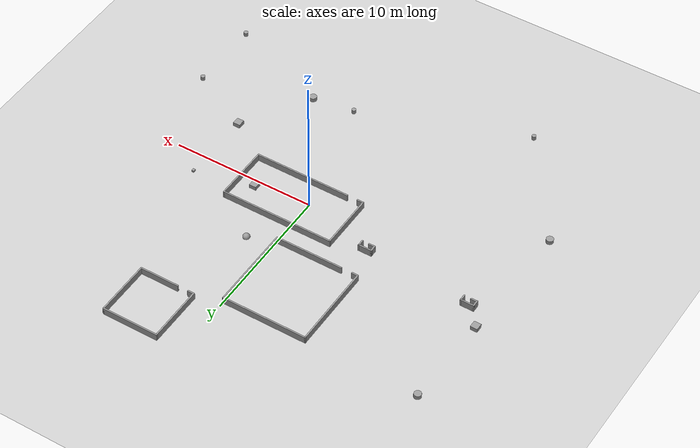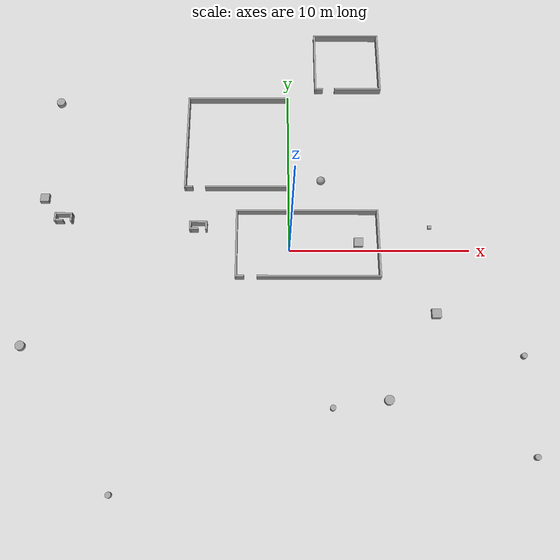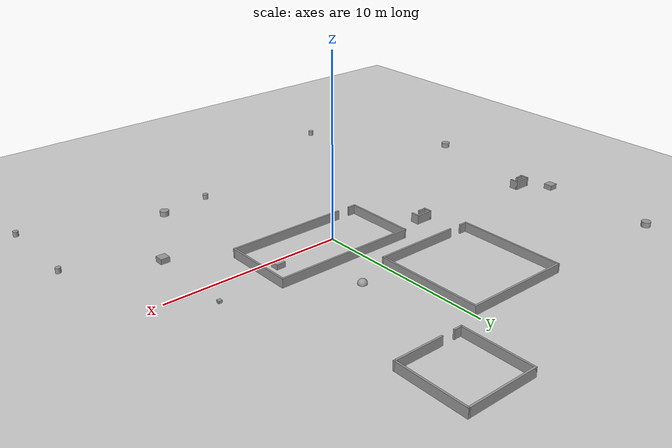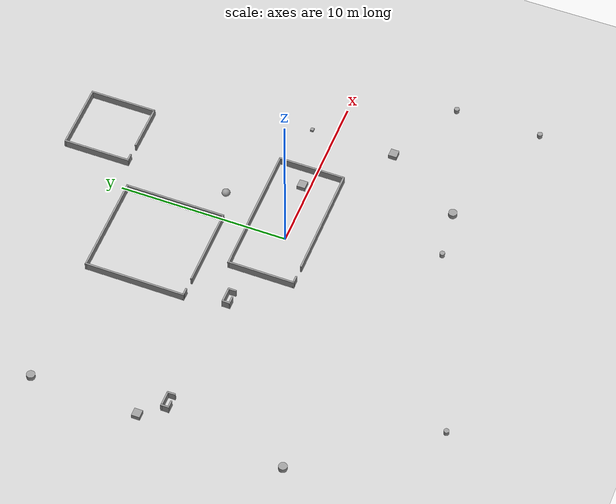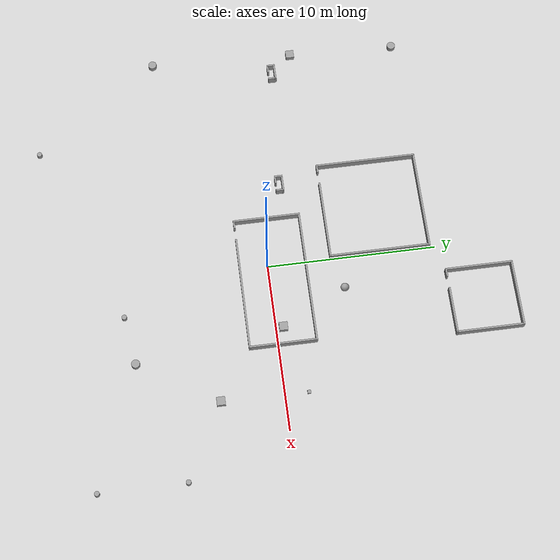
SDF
<sdf version="1.6">
 <world name="default">
  <model name="ground_plane">
   <static>1</static>
   <link name="link">
    <collision name="collision">
     <geometry><plane><normal>0 0 1</normal><size>30 30</size></plane></geometry>
     <surface>
      <contact><collide_bitmask>65535</collide_bitmask></contact>
      <friction><ode><mu>100</mu><mu2>50</mu2></ode></friction>
     </surface>
     <max_contacts>15</max_contacts>
    </collision>
    <visual name="visual">
     <cast_shadows>0</cast_shadows>
     <geometry><plane><normal>0 0 1</normal><size>30 30</size></plane></geometry>
     <material>
      <script><uri>file://media/materials/scripts/gazebo.material</uri><name>Gazebo/Grey</name></script>
     </material>
    </visual>
   </link>
  </model>
  <model name="shape3">
   <pose>1 0.3 0 0 -0 0</pose>
   <link name="Wall_11">
    <collision name="Wall_11_Collision">
     <geometry><box><size>4 0.1 0.5</size></box></geometry>
     <pose>0 0 0.25 0 -0 0</pose>
    </collision>
    <visual name="Wall_11_Visual">
     <pose>0 0 0.25 0 -0 0</pose>
     <geometry><box><size>4 0.1 0.5</size></box></geometry>
     <material>
      <script><uri>file://media/materials/scripts/gazebo.material</uri><name>Gazebo/Grey</name></script>
      <ambient>1 1 1 1</ambient>
     </material>
     <meta><layer>0</layer></meta>
    </visual>
    <pose>-3.95 0 0 0 -0 -1.5708</pose>
   </link>
   <link name="Wall_12">
    <collision name="Wall_12_Collision">
     <geometry><box><size>0.5 0.1 0.5</size></box></geometry>
     <pose>0 0 0.25 0 -0 0</pose>
    </collision>
    <visual name="Wall_12_Visual">
     <pose>0 0 0.25 0 -0 0</pose>
     <geometry><box><size>0.5 0.1 0.5</size></box></geometry>
     <material>
      <script><uri>file://media/materials/scripts/gazebo.material</uri><name>Gazebo/Grey</name></script>
      <ambient>1 1 1 1</ambient>
     </material>
     <meta><layer>0</layer></meta>
    </visual>
    <pose>-3.75 -1.95 0 0 -0 0</pose>
   </link>
   <link name="Wall_7">
    <collision name="Wall_7_Collision">
     <geometry><box><size>8 0.1 0.5</size></box></geometry>
     <pose>0 0 0.25 0 -0 0</pose>
    </collision>
    <visual name="Wall_7_Visual">
     <pose>0 0 0.25 0 -0 0</pose>
     <geometry><box><size>8 0.1 0.5</size></box></geometry>
     <material>
      <script><uri>file://media/materials/scripts/gazebo.material</uri><name>Gazebo/Grey</name></script>
      <ambient>1 1 1 1</ambient>
     </material>
     <meta><layer>0</layer></meta>
    </visual>
    <pose>-0 1.95 0 0 -0 0</pose>
   </link>
   <link name="Wall_8">
    <collision name="Wall_8_Collision">
     <geometry><box><size>4 0.1 0.5</size></box></geometry>
     <pose>0 0 0.25 0 -0 0</pose>
    </collision>
    <visual name="Wall_8_Visual">
     <pose>0 0 0.25 0 -0 0</pose>
     <geometry><box><size>4 0.1 0.5</size></box></geometry>
     <material>
      <script><uri>file://media/materials/scripts/gazebo.material</uri><name>Gazebo/Grey</name></script>
      <ambient>1 1 1 1</ambient>
     </material>
     <meta><layer>0</layer></meta>
    </visual>
    <pose>3.95 0 0 0 -0 -1.5708</pose>
   </link>
   <link name="Wall_9">
    <collision name="Wall_9_Collision">
     <geometry><box><size>6.8 0.1 0.5</size></box></geometry>
     <pose>0 0 0.25 0 -0 0</pose>
    </collision>
    <visual name="Wall_9_Visual">
     <pose>0 0 0.25 0 -0 0</pose>
     <geometry><box><size>6.8 0.1 0.5</size></box></geometry>
     <material>
      <script><uri>file://media/materials/scripts/gazebo.material</uri><name>Gazebo/Grey</name></script>
      <ambient>1 1 1 1</ambient>
     </material>
     <meta><layer>0</layer></meta>
    </visual>
    <pose>0.6 -1.95 0 0 -0 3.14159</pose>
   </link>
   <static>1</static>
  </model>
  <model name="box_d=50">
   <link name="link_2">
    <inertial>
     <mass>1</mass>
     <inertia>
      <ixx>0.166667</ixx>
      <ixy>0</ixy>
      <ixz>0</ixz>
      <iyy>0.166667</iyy>
      <iyz>0</iyz>
      <izz>0.166667</izz>
     </inertia>
    </inertial>
    <pose>3.85 0.45 0 0 -0 0</pose>
    <visual name="visual">
     <geometry><box><size>0.5 0.5 0.5</size></box></geometry>
     <material>
      <lighting>1</lighting>
      <script><uri>file://media/materials/scripts/gazebo.material</uri><name>Gazebo/Grey</name></script>
      <shader type="vertex"><normal_map>__default__</normal_map></shader>
      <ambient>0.3 0.3 0.3 1</ambient>
      <diffuse>0.7 0.7 0.7 1</diffuse>
      <specular>0.01 0.01 0.01 1</specular>
      <emissive>0 0 0 1</emissive>
     </material>
    </visual>
    <collision name="collision">
     <geometry><box><size>0.5 0.5 0.5</size></box></geometry>
     <surface>
      <friction>
       <ode><mu>1</mu><mu2>1</mu2><fdir1>0 0 0</fdir1><slip1>0</slip1><slip2>0</slip2></ode>
       <torsional>
        <coefficient>1</coefficient>
        <patch_radius>0</patch_radius>
        <surface_radius>0</surface_radius>
        <use_patch_radius>1</use_patch_radius>
        <ode><slip>0</slip></ode>
       </torsional>
      </friction>
      <bounce><restitution_coefficient>0</restitution_coefficient><threshold>1e+06</threshold></bounce>
      <contact>
       <collide_without_contact>0</collide_without_contact>
       <collide_without_contact_bitmask>1</collide_without_contact_bitmask>
       <collide_bitmask>1</collide_bitmask>
       <ode>
        <soft_cfm>0</soft_cfm>
        <soft_erp>0.2</soft_erp>
        <kp>1e+13</kp>
        <kd>1</kd>
        <max_vel>0.01</max_vel>
        <min_depth>0</min_depth>
       </ode>
       <bullet>
        <split_impulse>1</split_impulse>
        <split_impulse_penetration_threshold>-0.01</split_impulse_penetration_threshold>
        <soft_cfm>0</soft_cfm>
        <soft_erp>0.2</soft_erp>
        <kp>1e+13</kp>
        <kd>1</kd>
       </bullet>
      </contact>
     </surface>
    </collision>
   </link>
   <static>0</static>
  </model>
  <model name="shape0">
   <pose>-5.1 1.35 0 0 -0 0</pose>
   <link name="Wall_0">
    <pose>0 0.2 0 0 -0 0</pose>
    <inertial>
     <mass>1</mass>
     <inertia><ixx>1</ixx><ixy>0</ixy><ixz>0</ixz><iyy>1</iyy><iyz>0</iyz><izz>1</izz></inertia>
    </inertial>
    <visual name="Wall_0_Visual">
     <pose>0 0 0.25 0 -0 0</pose>
     <geometry><box><size>1 0.1 0.5</size></box></geometry>
     <material>
      <script><uri>file://media/materials/scripts/gazebo.material</uri><name>Gazebo/Grey</name></script>
      <ambient>1 1 1 1</ambient>
      <shader type="vertex"><normal_map>__default__</normal_map></shader>
      <diffuse>0.7 0.7 0.7 1</diffuse>
      <specular>0.01 0.01 0.01 1</specular>
      <emissive>0 0 0 1</emissive>
     </material>
     <meta><layer>0</layer></meta>
    </visual>
    <collision name="Wall_0_Collision">
     <pose>0 0 0.25 0 -0 0</pose>
     <geometry><box><size>1 0.1 0.5</size></box></geometry>
     <surface>
      <friction>
       <ode><mu>1</mu><mu2>1</mu2><fdir1>0 0 0</fdir1><slip1>0</slip1><slip2>0</slip2></ode>
       <torsional>
        <coefficient>1</coefficient>
        <patch_radius>0</patch_radius>
        <surface_radius>0</surface_radius>
        <use_patch_radius>1</use_patch_radius>
        <ode><slip>0</slip></ode>
       </torsional>
      </friction>
      <bounce><restitution_coefficient>0</restitution_coefficient><threshold>1e+06</threshold></bounce>
      <contact>
       <collide_without_contact>0</collide_without_contact>
       <collide_without_contact_bitmask>1</collide_without_contact_bitmask>
       <collide_bitmask>1</collide_bitmask>
       <ode>
        <soft_cfm>0</soft_cfm>
        <soft_erp>0.2</soft_erp>
        <kp>1e+13</kp>
        <kd>1</kd>
        <max_vel>0.01</max_vel>
        <min_depth>0</min_depth>
       </ode>
       <bullet>
        <split_impulse>1</split_impulse>
        <split_impulse_penetration_threshold>-0.01</split_impulse_penetration_threshold>
        <soft_cfm>0</soft_cfm>
        <soft_erp>0.2</soft_erp>
        <kp>1e+13</kp>
        <kd>1</kd>
       </bullet>
      </contact>
     </surface>
    </collision>
   </link>
   <link name="Wall_2">
    <pose>-0.45 0 0.01 0 0 -1.5708</pose>
    <inertial>
     <mass>1</mass>
     <inertia><ixx>1</ixx><ixy>0</ixy><ixz>0</ixz><iyy>1</iyy><iyz>0</iyz><izz>1</izz></inertia>
    </inertial>
    <visual name="Wall_2_Visual">
     <pose>0 0 0.25 0 -0 0</pose>
     <geometry><box><size>0.5 0.1 0.5</size></box></geometry>
     <material>
      <script><uri>file://media/materials/scripts/gazebo.material</uri><name>Gazebo/Grey</name></script>
      <ambient>1 1 1 1</ambient>
      <shader type="vertex"><normal_map>__default__</normal_map></shader>
      <diffuse>0.7 0.7 0.7 1</diffuse>
      <specular>0.01 0.01 0.01 1</specular>
      <emissive>0 0 0 1</emissive>
     </material>
     <meta><layer>0</layer></meta>
    </visual>
    <collision name="Wall_2_Collision">
     <pose>0 0 0.25 0 -0 0</pose>
     <geometry><box><size>0.5 0.1 0.5</size></box></geometry>
     <surface>
      <friction>
       <ode><mu>1</mu><mu2>1</mu2><fdir1>0 0 0</fdir1><slip1>0</slip1><slip2>0</slip2></ode>
       <torsional>
        <coefficient>1</coefficient>
        <patch_radius>0</patch_radius>
        <surface_radius>0</surface_radius>
        <use_patch_radius>1</use_patch_radius>
        <ode><slip>0</slip></ode>
       </torsional>
      </friction>
      <bounce><restitution_coefficient>0</restitution_coefficient><threshold>1e+06</threshold></bounce>
      <contact>
       <collide_without_contact>0</collide_without_contact>
       <collide_without_contact_bitmask>1</collide_without_contact_bitmask>
       <collide_bitmask>1</collide_bitmask>
       <ode>
        <soft_cfm>0</soft_cfm>
        <soft_erp>0.2</soft_erp>
        <kp>1e+13</kp>
        <kd>1</kd>
        <max_vel>0.01</max_vel>
        <min_depth>0</min_depth>
       </ode>
       <bullet>
        <split_impulse>1</split_impulse>
        <split_impulse_penetration_threshold>-0.01</split_impulse_penetration_threshold>
        <soft_cfm>0</soft_cfm>
        <soft_erp>0.2</soft_erp>
        <kp>1e+13</kp>
        <kd>1</kd>
       </bullet>
      </contact>
     </surface>
    </collision>
   </link>
   <link name="Wall_4">
    <pose>0.45 0 0 0 0 -1.5708</pose>
    <inertial>
     <mass>1</mass>
     <inertia><ixx>1</ixx><ixy>0</ixy><ixz>0</ixz><iyy>1</iyy><iyz>0</iyz><izz>1</izz></inertia>
    </inertial>
    <visual name="Wall_4_Visual">
     <pose>0 0 0.25 0 -0 0</pose>
     <geometry><box><size>0.5 0.1 0.5</size></box></geometry>
     <material>
      <script><uri>file://media/materials/scripts/gazebo.material</uri><name>Gazebo/Grey</name></script>
      <ambient>1 1 1 1</ambient>
      <shader type="vertex"><normal_map>__default__</normal_map></shader>
      <diffuse>0.7 0.7 0.7 1</diffuse>
      <specular>0.01 0.01 0.01 1</specular>
      <emissive>0 0 0 1</emissive>
     </material>
     <meta><layer>0</layer></meta>
    </visual>
    <collision name="Wall_4_Collision">
     <pose>0 0 0.25 0 -0 0</pose>
     <geometry><box><size>0.5 0.1 0.5</size></box></geometry>
     <surface>
      <friction>
       <ode><mu>1</mu><mu2>1</mu2><fdir1>0 0 0</fdir1><slip1>0</slip1><slip2>0</slip2></ode>
       <torsional>
        <coefficient>1</coefficient>
        <patch_radius>0</patch_radius>
        <surface_radius>0</surface_radius>
        <use_patch_radius>1</use_patch_radius>
        <ode><slip>0</slip></ode>
       </torsional>
      </friction>
      <bounce><restitution_coefficient>0</restitution_coefficient><threshold>1e+06</threshold></bounce>
      <contact>
       <collide_without_contact>0</collide_without_contact>
       <collide_without_contact_bitmask>1</collide_without_contact_bitmask>
       <collide_bitmask>1</collide_bitmask>
       <ode>
        <soft_cfm>0</soft_cfm>
        <soft_erp>0.2</soft_erp>
        <kp>1e+13</kp>
        <kd>1</kd>
        <max_vel>0.01</max_vel>
        <min_depth>0</min_depth>
       </ode>
       <bullet>
        <split_impulse>1</split_impulse>
        <split_impulse_penetration_threshold>-0.01</split_impulse_penetration_threshold>
        <soft_cfm>0</soft_cfm>
        <soft_erp>0.2</soft_erp>
        <kp>1e+13</kp>
        <kd>1</kd>
       </bullet>
      </contact>
     </surface>
    </collision>
   </link>
   <link name="Wall_7">
    <pose>-0.25 -0.2 0 0 -0 0</pose>
    <inertial>
     <mass>1</mass>
     <inertia><ixx>1</ixx><ixy>0</ixy><ixz>0</ixz><iyy>1</iyy><iyz>0</iyz><izz>1</izz></inertia>
    </inertial>
    <visual name="Wall_7_Visual">
     <pose>0 0 0.25 0 -0 0</pose>
     <geometry><box><size>0.5 0.1 0.5</size></box></geometry>
     <material>
      <script><uri>file://media/materials/scripts/gazebo.material</uri><name>Gazebo/Grey</name></script>
      <ambient>1 1 1 1</ambient>
      <shader type="vertex"><normal_map>__default__</normal_map></shader>
      <diffuse>0.7 0.7 0.7 1</diffuse>
      <specular>0.01 0.01 0.01 1</specular>
      <emissive>0 0 0 1</emissive>
     </material>
     <meta><layer>0</layer></meta>
    </visual>
    <collision name="Wall_7_Collision">
     <pose>0 0 0.25 0 -0 0</pose>
     <geometry><box><size>0.5 0.1 0.5</size></box></geometry>
     <surface>
      <friction>
       <ode><mu>1</mu><mu2>1</mu2><fdir1>0 0 0</fdir1><slip1>0</slip1><slip2>0</slip2></ode>
       <torsional>
        <coefficient>1</coefficient>
        <patch_radius>0</patch_radius>
        <surface_radius>0</surface_radius>
        <use_patch_radius>1</use_patch_radius>
        <ode><slip>0</slip></ode>
       </torsional>
      </friction>
      <bounce><restitution_coefficient>0</restitution_coefficient><threshold>1e+06</threshold></bounce>
      <contact>
       <collide_without_contact>0</collide_without_contact>
       <collide_without_contact_bitmask>1</collide_without_contact_bitmask>
       <collide_bitmask>1</collide_bitmask>
       <ode>
        <soft_cfm>0</soft_cfm>
        <soft_erp>0.2</soft_erp>
        <kp>1e+13</kp>
        <kd>1</kd>
        <max_vel>0.01</max_vel>
        <min_depth>0</min_depth>
       </ode>
       <bullet>
        <split_impulse>1</split_impulse>
        <split_impulse_penetration_threshold>-0.01</split_impulse_penetration_threshold>
        <soft_cfm>0</soft_cfm>
        <soft_erp>0.2</soft_erp>
        <kp>1e+13</kp>
        <kd>1</kd>
       </bullet>
      </contact>
     </surface>
    </collision>
   </link>
   <static>1</static>
  </model>
  <model name="cylinder_d=50">
   <link name="link_0">
    <inertial>
     <mass>1</mass>
     <inertia><ixx>0.145833</ixx><ixy>0</ixy><ixz>0</ixz><iyy>0.145833</iyy><iyz>0</iyz><izz>0.125</izz></inertia>
    </inertial>
    <pose>5.05 -8.25 0 0 -0 0</pose>
    <visual name="visual">
     <geometry><cylinder><radius>0.25</radius><length>0.5</length></cylinder></geometry>
     <material>
      <lighting>1</lighting>
      <script><uri>file://media/materials/scripts/gazebo.material</uri><name>Gazebo/Grey</name></script>
      <shader type="vertex"><normal_map>__default__</normal_map></shader>
      <ambient>0.3 0.3 0.3 1</ambient>
      <diffuse>0.7 0.7 0.7 1</diffuse>
      <specular>0.01 0.01 0.01 1</specular>
      <emissive>0 0 0 1</emissive>
     </material>
    </visual>
    <collision name="collision">
     <geometry><cylinder><radius>0.25</radius><length>0.5</length></cylinder></geometry>
     <surface>
      <friction>
       <ode><mu>1</mu><mu2>1</mu2><fdir1>0 0 0</fdir1><slip1>0</slip1><slip2>0</slip2></ode>
       <torsional>
        <coefficient>1</coefficient>
        <patch_radius>0</patch_radius>
        <surface_radius>0</surface_radius>
        <use_patch_radius>1</use_patch_radius>
        <ode><slip>0</slip></ode>
       </torsional>
      </friction>
      <bounce><restitution_coefficient>0</restitution_coefficient><threshold>1e+06</threshold></bounce>
      <contact>
       <collide_without_contact>0</collide_without_contact>
       <collide_without_contact_bitmask>1</collide_without_contact_bitmask>
       <collide_bitmask>1</collide_bitmask>
       <ode>
        <soft_cfm>0</soft_cfm>
        <soft_erp>0.2</soft_erp>
        <kp>1e+13</kp>
        <kd>1</kd>
        <max_vel>0.01</max_vel>
        <min_depth>0</min_depth>
       </ode>
       <bullet>
        <split_impulse>1</split_impulse>
        <split_impulse_penetration_threshold>-0.01</split_impulse_penetration_threshold>
        <soft_cfm>0</soft_cfm>
        <soft_erp>0.2</soft_erp>
        <kp>1e+13</kp>
        <kd>1</kd>
       </bullet>
      </contact>
     </surface>
    </collision>
   </link>
   <static>0</static>
  </model>
  <model name="box_d=20">
   <link name="link_2">
    <inertial>
     <mass>1</mass>
     <inertia>
      <ixx>0.166667</ixx>
      <ixy>0</ixy>
      <ixz>0</ixz>
      <iyy>0.166667</iyy>
      <iyz>0</iyz>
      <izz>0.166667</izz>
     </inertia>
    </inertial>
    <pose>7.9 1.4 0 0 -0 0</pose>
    <visual name="visual">
     <geometry><box><size>0.2 0.2 0.2</size></box></geometry>
     <material>
      <lighting>1</lighting>
      <script><uri>file://media/materials/scripts/gazebo.material</uri><name>Gazebo/Grey</name></script>
      <shader type="vertex"><normal_map>__default__</normal_map></shader>
      <ambient>0.3 0.3 0.3 1</ambient>
      <diffuse>0.7 0.7 0.7 1</diffuse>
      <specular>0.01 0.01 0.01 1</specular>
      <emissive>0 0 0 1</emissive>
     </material>
    </visual>
    <collision name="collision">
     <geometry><box><size>0.2 0.2 0.2</size></box></geometry>
     <surface>
      <friction>
       <ode><mu>1</mu><mu2>1</mu2><fdir1>0 0 0</fdir1><slip1>0</slip1><slip2>0</slip2></ode>
       <torsional>
        <coefficient>1</coefficient>
        <patch_radius>0</patch_radius>
        <surface_radius>0</surface_radius>
        <use_patch_radius>1</use_patch_radius>
        <ode><slip>0</slip></ode>
       </torsional>
      </friction>
      <bounce><restitution_coefficient>0</restitution_coefficient><threshold>1e+06</threshold></bounce>
      <contact>
       <collide_without_contact>0</collide_without_contact>
       <collide_without_contact_bitmask>1</collide_without_contact_bitmask>
       <collide_bitmask>1</collide_bitmask>
       <ode>
        <soft_cfm>0</soft_cfm>
        <soft_erp>0.2</soft_erp>
        <kp>1e+13</kp>
        <kd>1</kd>
        <max_vel>0.01</max_vel>
        <min_depth>0</min_depth>
       </ode>
       <bullet>
        <split_impulse>1</split_impulse>
        <split_impulse_penetration_threshold>-0.01</split_impulse_penetration_threshold>
        <soft_cfm>0</soft_cfm>
        <soft_erp>0.2</soft_erp>
        <kp>1e+13</kp>
        <kd>1</kd>
       </bullet>
      </contact>
     </surface>
    </collision>
   </link>
   <static>0</static>
  </model>
  <model name="cylinder_d=50">
   <link name="link_0">
    <inertial>
     <mass>1</mass>
     <inertia><ixx>0.145833</ixx><ixy>0</ixy><ixz>0</ixz><iyy>0.145833</iyy><iyz>0</iyz><izz>0.125</izz></inertia>
    </inertial>
    <pose>-14.25 -5.45 0 0 -0 0</pose>
    <visual name="visual">
     <geometry><cylinder><radius>0.25</radius><length>0.5</length></cylinder></geometry>
     <material>
      <lighting>1</lighting>
      <script><uri>file://media/materials/scripts/gazebo.material</uri><name>Gazebo/Grey</name></script>
      <shader type="vertex"><normal_map>__default__</normal_map></shader>
      <ambient>0.3 0.3 0.3 1</ambient>
      <diffuse>0.7 0.7 0.7 1</diffuse>
      <specular>0.01 0.01 0.01 1</specular>
      <emissive>0 0 0 1</emissive>
     </material>
    </visual>
    <collision name="collision">
     <geometry><cylinder><radius>0.25</radius><length>0.5</length></cylinder></geometry>
     <surface>
      <friction>
       <ode><mu>1</mu><mu2>1</mu2><fdir1>0 0 0</fdir1><slip1>0</slip1><slip2>0</slip2></ode>
       <torsional>
        <coefficient>1</coefficient>
        <patch_radius>0</patch_radius>
        <surface_radius>0</surface_radius>
        <use_patch_radius>1</use_patch_radius>
        <ode><slip>0</slip></ode>
       </torsional>
      </friction>
      <bounce><restitution_coefficient>0</restitution_coefficient><threshold>1e+06</threshold></bounce>
      <contact>
       <collide_without_contact>0</collide_without_contact>
       <collide_without_contact_bitmask>1</collide_without_contact_bitmask>
       <collide_bitmask>1</collide_bitmask>
       <ode>
        <soft_cfm>0</soft_cfm>
        <soft_erp>0.2</soft_erp>
        <kp>1e+13</kp>
        <kd>1</kd>
        <max_vel>0.01</max_vel>
        <min_depth>0</min_depth>
       </ode>
       <bullet>
        <split_impulse>1</split_impulse>
        <split_impulse_penetration_threshold>-0.01</split_impulse_penetration_threshold>
        <soft_cfm>0</soft_cfm>
        <soft_erp>0.2</soft_erp>
        <kp>1e+13</kp>
        <kd>1</kd>
       </bullet>
      </contact>
     </surface>
    </collision>
   </link>
   <static>0</static>
  </model>
  <model name="box_d=50">
   <link name="link_2">
    <inertial>
     <mass>1</mass>
     <inertia>
      <ixx>0.166667</ixx>
      <ixy>0</ixy>
      <ixz>0</ixz>
      <iyy>0.166667</iyy>
      <iyz>0</iyz>
      <izz>0.166667</izz>
     </inertia>
    </inertial>
    <pose>7.85 -3.65 0 0 -0 0</pose>
    <visual name="visual">
     <geometry><box><size>0.5 0.5 0.5</size></box></geometry>
     <material>
      <lighting>1</lighting>
      <script><uri>file://media/materials/scripts/gazebo.material</uri><name>Gazebo/Grey</name></script>
      <shader type="vertex"><normal_map>__default__</normal_map></shader>
      <ambient>0.3 0.3 0.3 1</ambient>
      <diffuse>0.7 0.7 0.7 1</diffuse>
      <specular>0.01 0.01 0.01 1</specular>
      <emissive>0 0 0 1</emissive>
     </material>
    </visual>
    <collision name="collision">
     <geometry><box><size>0.5 0.5 0.5</size></box></geometry>
     <surface>
      <friction>
       <ode><mu>1</mu><mu2>1</mu2><fdir1>0 0 0</fdir1><slip1>0</slip1><slip2>0</slip2></ode>
       <torsional>
        <coefficient>1</coefficient>
        <patch_radius>0</patch_radius>
        <surface_radius>0</surface_radius>
        <use_patch_radius>1</use_patch_radius>
        <ode><slip>0</slip></ode>
       </torsional>
      </friction>
      <bounce><restitution_coefficient>0</restitution_coefficient><threshold>1e+06</threshold></bounce>
      <contact>
       <collide_without_contact>0</collide_without_contact>
       <collide_without_contact_bitmask>1</collide_without_contact_bitmask>
       <collide_bitmask>1</collide_bitmask>
       <ode>
        <soft_cfm>0</soft_cfm>
        <soft_erp>0.2</soft_erp>
        <kp>1e+13</kp>
        <kd>1</kd>
        <max_vel>0.01</max_vel>
        <min_depth>0</min_depth>
       </ode>
       <bullet>
        <split_impulse>1</split_impulse>
        <split_impulse_penetration_threshold>-0.01</split_impulse_penetration_threshold>
        <soft_cfm>0</soft_cfm>
        <soft_erp>0.2</soft_erp>
        <kp>1e+13</kp>
        <kd>1</kd>
       </bullet>
      </contact>
     </surface>
    </collision>
   </link>
   <static>0</static>
  </model>
  <model name="shape7">
   <pose>-3 6.7 0 0 -0 0</pose>
   <link name="Wall_34">
    <collision name="Wall_34_Collision">
     <geometry><box><size>6 0.1 0.5</size></box></geometry>
     <pose>0 0 0.25 0 -0 0</pose>
    </collision>
    <visual name="Wall_34_Visual">
     <pose>0 0 0.25 0 -0 0</pose>
     <geometry><box><size>6 0.1 0.5</size></box></geometry>
     <material>
      <script><uri>file://media/materials/scripts/gazebo.material</uri><name>Gazebo/Grey</name></script>
      <ambient>1 1 1 1</ambient>
     </material>
     <meta><layer>0</layer></meta>
    </visual>
    <pose>0 2.95 0 0 -0 0</pose>
   </link>
   <link name="Wall_35">
    <collision name="Wall_35_Collision">
     <geometry><box><size>6 0.1 0.5</size></box></geometry>
     <pose>0 0 0.25 0 -0 0</pose>
    </collision>
    <visual name="Wall_35_Visual">
     <pose>0 0 0.25 0 -0 0</pose>
     <geometry><box><size>6 0.1 0.5</size></box></geometry>
     <material>
      <script><uri>file://media/materials/scripts/gazebo.material</uri><name>Gazebo/Grey</name></script>
      <ambient>1 1 1 1</ambient>
     </material>
     <meta><layer>0</layer></meta>
    </visual>
    <pose>2.95 0 0 0 -0 -1.5708</pose>
   </link>
   <link name="Wall_36">
    <collision name="Wall_36_Collision">
     <geometry><box><size>4.8 0.1 0.5</size></box></geometry>
     <pose>0 0 0.25 0 -0 0</pose>
    </collision>
    <visual name="Wall_36_Visual">
     <pose>0 0 0.25 0 -0 0</pose>
     <geometry><box><size>4.8 0.1 0.5</size></box></geometry>
     <material>
      <script><uri>file://media/materials/scripts/gazebo.material</uri><name>Gazebo/Grey</name></script>
      <ambient>1 1 1 1</ambient>
     </material>
     <meta><layer>0</layer></meta>
    </visual>
    <pose>0.6 -2.95 0 0 -0 3.14159</pose>
   </link>
   <link name="Wall_38">
    <collision name="Wall_38_Collision">
     <geometry><box><size>6 0.1 0.5</size></box></geometry>
     <pose>0 0 0.25 0 -0 0</pose>
    </collision>
    <visual name="Wall_38_Visual">
     <pose>0 0 0.25 0 -0 0</pose>
     <geometry><box><size>6 0.1 0.5</size></box></geometry>
     <material>
      <script><uri>file://media/materials/scripts/gazebo.material</uri><name>Gazebo/Grey</name></script>
      <ambient>1 1 1 1</ambient>
     </material>
     <meta><layer>0</layer></meta>
    </visual>
    <pose>-2.95 0 0 0 -0 -1.5708</pose>
   </link>
   <link name="Wall_39">
    <collision name="Wall_39_Collision">
     <geometry><box><size>0.5 0.1 0.5</size></box></geometry>
     <pose>0 0 0.25 0 -0 0</pose>
    </collision>
    <visual name="Wall_39_Visual">
     <pose>0 0 0.25 0 -0 0</pose>
     <geometry><box><size>0.5 0.1 0.5</size></box></geometry>
     <material>
      <script><uri>file://media/materials/scripts/gazebo.material</uri><name>Gazebo/Grey</name></script>
      <ambient>1 1 1 1</ambient>
     </material>
     <meta><layer>0</layer></meta>
    </visual>
    <pose>-2.75 -2.95 0 0 -0 0</pose>
   </link>
   <static>1</static>
  </model>
  <model name="box_d=50">
   <link name="link_2">
    <inertial>
     <mass>1</mass>
     <inertia>
      <ixx>0.166667</ixx>
      <ixy>0</ixy>
      <ixz>0</ixz>
      <iyy>0.166667</iyy>
      <iyz>0</iyz>
      <izz>0.166667</izz>
     </inertia>
    </inertial>
    <pose>-13.95 3.15 0 0 -0 0</pose>
    <visual name="visual">
     <geometry><box><size>0.5 0.5 0.5</size></box></geometry>
     <material>
      <lighting>1</lighting>
      <script><uri>file://media/materials/scripts/gazebo.material</uri><name>Gazebo/Grey</name></script>
      <shader type="vertex"><normal_map>__default__</normal_map></shader>
      <ambient>0.3 0.3 0.3 1</ambient>
      <diffuse>0.7 0.7 0.7 1</diffuse>
      <specular>0.01 0.01 0.01 1</specular>
      <emissive>0 0 0 1</emissive>
     </material>
    </visual>
    <collision name="collision">
     <geometry><box><size>0.5 0.5 0.5</size></box></geometry>
     <surface>
      <friction>
       <ode><mu>1</mu><mu2>1</mu2><fdir1>0 0 0</fdir1><slip1>0</slip1><slip2>0</slip2></ode>
       <torsional>
        <coefficient>1</coefficient>
        <patch_radius>0</patch_radius>
        <surface_radius>0</surface_radius>
        <use_patch_radius>1</use_patch_radius>
        <ode><slip>0</slip></ode>
       </torsional>
      </friction>
      <bounce><restitution_coefficient>0</restitution_coefficient><threshold>1e+06</threshold></bounce>
      <contact>
       <collide_without_contact>0</collide_without_contact>
       <collide_without_contact_bitmask>1</collide_without_contact_bitmask>
       <collide_bitmask>1</collide_bitmask>
       <ode>
        <soft_cfm>0</soft_cfm>
        <soft_erp>0.2</soft_erp>
        <kp>1e+13</kp>
        <kd>1</kd>
        <max_vel>0.01</max_vel>
        <min_depth>0</min_depth>
       </ode>
       <bullet>
        <split_impulse>1</split_impulse>
        <split_impulse_penetration_threshold>-0.01</split_impulse_penetration_threshold>
        <soft_cfm>0</soft_cfm>
        <soft_erp>0.2</soft_erp>
        <kp>1e+13</kp>
        <kd>1</kd>
       </bullet>
      </contact>
     </surface>
    </collision>
   </link>
   <static>0</static>
  </model>
  <model name="cylinder_d=30">
   <link name="link_0">
    <inertial>
     <mass>1</mass>
     <inertia><ixx>0.145833</ixx><ixy>0</ixy><ixz>0</ixz><iyy>0.145833</iyy><iyz>0</iyz><izz>0.125</izz></inertia>
    </inertial>
    <pose>12.25 -5.95 0 0 -0 0</pose>
    <visual name="visual">
     <geometry><cylinder><radius>0.15</radius><length>0.5</length></cylinder></geometry>
     <material>
      <lighting>1</lighting>
      <script><uri>file://media/materials/scripts/gazebo.material</uri><name>Gazebo/Grey</name></script>
      <shader type="vertex"><normal_map>__default__</normal_map></shader>
      <ambient>0.3 0.3 0.3 1</ambient>
      <diffuse>0.7 0.7 0.7 1</diffuse>
      <specular>0.01 0.01 0.01 1</specular>
      <emissive>0 0 0 1</emissive>
     </material>
    </visual>
    <collision name="collision">
     <geometry><cylinder><radius>0.15</radius><length>0.5</length></cylinder></geometry>
     <surface>
      <friction>
       <ode><mu>1</mu><mu2>1</mu2><fdir1>0 0 0</fdir1><slip1>0</slip1><slip2>0</slip2></ode>
       <torsional>
        <coefficient>1</coefficient>
        <patch_radius>0</patch_radius>
        <surface_radius>0</surface_radius>
        <use_patch_radius>1</use_patch_radius>
        <ode><slip>0</slip></ode>
       </torsional>
      </friction>
      <bounce><restitution_coefficient>0</restitution_coefficient><threshold>1e+06</threshold></bounce>
      <contact>
       <collide_without_contact>0</collide_without_contact>
       <collide_without_contact_bitmask>1</collide_without_contact_bitmask>
       <collide_bitmask>1</collide_bitmask>
       <ode>
        <soft_cfm>0</soft_cfm>
        <soft_erp>0.2</soft_erp>
        <kp>1e+13</kp>
        <kd>1</kd>
        <max_vel>0.01</max_vel>
        <min_depth>0</min_depth>
       </ode>
       <bullet>
        <split_impulse>1</split_impulse>
        <split_impulse_penetration_threshold>-0.01</split_impulse_penetration_threshold>
        <soft_cfm>0</soft_cfm>
        <soft_erp>0.2</soft_erp>
        <kp>1e+13</kp>
        <kd>1</kd>
       </bullet>
      </contact>
     </surface>
    </collision>
   </link>
   <static>0</static>
  </model>
  <model name="cylinder_d=30">
   <link name="link_0">
    <inertial>
     <mass>1</mass>
     <inertia><ixx>0.145833</ixx><ixy>0</ixy><ixz>0</ixz><iyy>0.145833</iyy><iyz>0</iyz><izz>0.125</izz></inertia>
    </inertial>
    <pose>12.25 -11.05 0 0 -0 0</pose>
    <visual name="visual">
     <geometry><cylinder><radius>0.15</radius><length>0.5</length></cylinder></geometry>
     <material>
      <lighting>1</lighting>
      <script><uri>file://media/materials/scripts/gazebo.material</uri><name>Gazebo/Grey</name></script>
      <shader type="vertex"><normal_map>__default__</normal_map></shader>
      <ambient>0.3 0.3 0.3 1</ambient>
      <diffuse>0.7 0.7 0.7 1</diffuse>
      <specular>0.01 0.01 0.01 1</specular>
      <emissive>0 0 0 1</emissive>
     </material>
    </visual>
    <collision name="collision">
     <geometry><cylinder><radius>0.15</radius><length>0.5</length></cylinder></geometry>
     <surface>
      <friction>
       <ode><mu>1</mu><mu2>1</mu2><fdir1>0 0 0</fdir1><slip1>0</slip1><slip2>0</slip2></ode>
       <torsional>
        <coefficient>1</coefficient>
        <patch_radius>0</patch_radius>
        <surface_radius>0</surface_radius>
        <use_patch_radius>1</use_patch_radius>
        <ode><slip>0</slip></ode>
       </torsional>
      </friction>
      <bounce><restitution_coefficient>0</restitution_coefficient><threshold>1e+06</threshold></bounce>
      <contact>
       <collide_without_contact>0</collide_without_contact>
       <collide_without_contact_bitmask>1</collide_without_contact_bitmask>
       <collide_bitmask>1</collide_bitmask>
       <ode>
        <soft_cfm>0</soft_cfm>
        <soft_erp>0.2</soft_erp>
        <kp>1e+13</kp>
        <kd>1</kd>
        <max_vel>0.01</max_vel>
        <min_depth>0</min_depth>
       </ode>
       <bullet>
        <split_impulse>1</split_impulse>
        <split_impulse_penetration_threshold>-0.01</split_impulse_penetration_threshold>
        <soft_cfm>0</soft_cfm>
        <soft_erp>0.2</soft_erp>
        <kp>1e+13</kp>
        <kd>1</kd>
       </bullet>
      </contact>
     </surface>
    </collision>
   </link>
   <static>0</static>
  </model>
  <model name="cylinder_d=30">
   <link name="link_0">
    <inertial>
     <mass>1</mass>
     <inertia><ixx>0.145833</ixx><ixy>0</ixy><ixz>0</ixz><iyy>0.145833</iyy><iyz>0</iyz><izz>0.125</izz></inertia>
    </inertial>
    <pose>2.15 -8.65 0 0 -0 0</pose>
    <visual name="visual">
     <geometry><cylinder><radius>0.15</radius><length>0.5</length></cylinder></geometry>
     <material>
      <lighting>1</lighting>
      <script><uri>file://media/materials/scripts/gazebo.material</uri><name>Gazebo/Grey</name></script>
      <shader type="vertex"><normal_map>__default__</normal_map></shader>
      <ambient>0.3 0.3 0.3 1</ambient>
      <diffuse>0.7 0.7 0.7 1</diffuse>
      <specular>0.01 0.01 0.01 1</specular>
      <emissive>0 0 0 1</emissive>
     </material>
    </visual>
    <collision name="collision">
     <geometry><cylinder><radius>0.15</radius><length>0.5</length></cylinder></geometry>
     <surface>
      <friction>
       <ode><mu>1</mu><mu2>1</mu2><fdir1>0 0 0</fdir1><slip1>0</slip1><slip2>0</slip2></ode>
       <torsional>
        <coefficient>1</coefficient>
        <patch_radius>0</patch_radius>
        <surface_radius>0</surface_radius>
        <use_patch_radius>1</use_patch_radius>
        <ode><slip>0</slip></ode>
       </torsional>
      </friction>
      <bounce><restitution_coefficient>0</restitution_coefficient><threshold>1e+06</threshold></bounce>
      <contact>
       <collide_without_contact>0</collide_without_contact>
       <collide_without_contact_bitmask>1</collide_without_contact_bitmask>
       <collide_bitmask>1</collide_bitmask>
       <ode>
        <soft_cfm>0</soft_cfm>
        <soft_erp>0.2</soft_erp>
        <kp>1e+13</kp>
        <kd>1</kd>
        <max_vel>0.01</max_vel>
        <min_depth>0</min_depth>
       </ode>
       <bullet>
        <split_impulse>1</split_impulse>
        <split_impulse_penetration_threshold>-0.01</split_impulse_penetration_threshold>
        <soft_cfm>0</soft_cfm>
        <soft_erp>0.2</soft_erp>
        <kp>1e+13</kp>
        <kd>1</kd>
       </bullet>
      </contact>
     </surface>
    </collision>
   </link>
   <static>0</static>
  </model>
  <model name="cylinder_d=50">
   <link name="link_0">
    <inertial>
     <mass>1</mass>
     <inertia><ixx>0.145833</ixx><ixy>0</ixy><ixz>0</ixz><iyy>0.145833</iyy><iyz>0</iyz><izz>0.125</izz></inertia>
    </inertial>
    <pose>-13.75 9.55 0 0 -0 0</pose>
    <visual name="visual">
     <geometry><cylinder><radius>0.25</radius><length>0.5</length></cylinder></geometry>
     <material>
      <lighting>1</lighting>
      <script><uri>file://media/materials/scripts/gazebo.material</uri><name>Gazebo/Grey</name></script>
      <shader type="vertex"><normal_map>__default__</normal_map></shader>
      <ambient>0.3 0.3 0.3 1</ambient>
      <diffuse>0.7 0.7 0.7 1</diffuse>
      <specular>0.01 0.01 0.01 1</specular>
      <emissive>0 0 0 1</emissive>
     </material>
    </visual>
    <collision name="collision">
     <geometry><cylinder><radius>0.25</radius><length>0.5</length></cylinder></geometry>
     <surface>
      <friction>
       <ode><mu>1</mu><mu2>1</mu2><fdir1>0 0 0</fdir1><slip1>0</slip1><slip2>0</slip2></ode>
       <torsional>
        <coefficient>1</coefficient>
        <patch_radius>0</patch_radius>
        <surface_radius>0</surface_radius>
        <use_patch_radius>1</use_patch_radius>
        <ode><slip>0</slip></ode>
       </torsional>
      </friction>
      <bounce><restitution_coefficient>0</restitution_coefficient><threshold>1e+06</threshold></bounce>
      <contact>
       <collide_without_contact>0</collide_without_contact>
       <collide_without_contact_bitmask>1</collide_without_contact_bitmask>
       <collide_bitmask>1</collide_bitmask>
       <ode>
        <soft_cfm>0</soft_cfm>
        <soft_erp>0.2</soft_erp>
        <kp>1e+13</kp>
        <kd>1</kd>
        <max_vel>0.01</max_vel>
        <min_depth>0</min_depth>
       </ode>
       <bullet>
        <split_impulse>1</split_impulse>
        <split_impulse_penetration_threshold>-0.01</split_impulse_penetration_threshold>
        <soft_cfm>0</soft_cfm>
        <soft_erp>0.2</soft_erp>
        <kp>1e+13</kp>
        <kd>1</kd>
       </bullet>
      </contact>
     </surface>
    </collision>
   </link>
   <static>0</static>
  </model>
  <model name="cylinder_d=30">
   <link name="link_0">
    <inertial>
     <mass>1</mass>
     <inertia><ixx>0.145833</ixx><ixy>0</ixy><ixz>0</ixz><iyy>0.145833</iyy><iyz>0</iyz><izz>0.125</izz></inertia>
    </inertial>
    <pose>-8.95 -12.85 0 0 -0 0</pose>
    <visual name="visual">
     <geometry><cylinder><radius>0.15</radius><length>0.5</length></cylinder></geometry>
     <material>
      <lighting>1</lighting>
      <script><uri>file://media/materials/scripts/gazebo.material</uri><name>Gazebo/Grey</name></script>
      <shader type="vertex"><normal_map>__default__</normal_map></shader>
      <ambient>0.3 0.3 0.3 1</ambient>
      <diffuse>0.7 0.7 0.7 1</diffuse>
      <specular>0.01 0.01 0.01 1</specular>
      <emissive>0 0 0 1</emissive>
     </material>
    </visual>
    <collision name="collision">
     <geometry><cylinder><radius>0.15</radius><length>0.5</length></cylinder></geometry>
     <surface>
      <friction>
       <ode><mu>1</mu><mu2>1</mu2><fdir1>0 0 0</fdir1><slip1>0</slip1><slip2>0</slip2></ode>
       <torsional>
        <coefficient>1</coefficient>
        <patch_radius>0</patch_radius>
        <surface_radius>0</surface_radius>
        <use_patch_radius>1</use_patch_radius>
        <ode><slip>0</slip></ode>
       </torsional>
      </friction>
      <bounce><restitution_coefficient>0</restitution_coefficient><threshold>1e+06</threshold></bounce>
      <contact>
       <collide_without_contact>0</collide_without_contact>
       <collide_without_contact_bitmask>1</collide_without_contact_bitmask>
       <collide_bitmask>1</collide_bitmask>
       <ode>
        <soft_cfm>0</soft_cfm>
        <soft_erp>0.2</soft_erp>
        <kp>1e+13</kp>
        <kd>1</kd>
        <max_vel>0.01</max_vel>
        <min_depth>0</min_depth>
       </ode>
       <bullet>
        <split_impulse>1</split_impulse>
        <split_impulse_penetration_threshold>-0.01</split_impulse_penetration_threshold>
        <soft_cfm>0</soft_cfm>
        <soft_erp>0.2</soft_erp>
        <kp>1e+13</kp>
        <kd>1</kd>
       </bullet>
      </contact>
     </surface>
    </collision>
   </link>
   <static>0</static>
  </model>
  <model name="shape0">
   <pose>-12.7 1.85 0 0 -0 0</pose>
   <link name="Wall_0">
    <pose>0 0.2 0 0 -0 0</pose>
    <inertial>
     <mass>1</mass>
     <inertia><ixx>1</ixx><ixy>0</ixy><ixz>0</ixz><iyy>1</iyy><iyz>0</iyz><izz>1</izz></inertia>
    </inertial>
    <visual name="Wall_0_Visual">
     <pose>0 0 0.25 0 -0 0</pose>
     <geometry><box><size>1 0.1 0.5</size></box></geometry>
     <material>
      <script><uri>file://media/materials/scripts/gazebo.material</uri><name>Gazebo/Grey</name></script>
      <ambient>1 1 1 1</ambient>
      <shader type="vertex"><normal_map>__default__</normal_map></shader>
      <diffuse>0.7 0.7 0.7 1</diffuse>
      <specular>0.01 0.01 0.01 1</specular>
      <emissive>0 0 0 1</emissive>
     </material>
     <meta><layer>0</layer></meta>
    </visual>
    <collision name="Wall_0_Collision">
     <pose>0 0 0.25 0 -0 0</pose>
     <geometry><box><size>1 0.1 0.5</size></box></geometry>
     <surface>
      <friction>
       <ode><mu>1</mu><mu2>1</mu2><fdir1>0 0 0</fdir1><slip1>0</slip1><slip2>0</slip2></ode>
       <torsional>
        <coefficient>1</coefficient>
        <patch_radius>0</patch_radius>
        <surface_radius>0</surface_radius>
        <use_patch_radius>1</use_patch_radius>
        <ode><slip>0</slip></ode>
       </torsional>
      </friction>
      <bounce><restitution_coefficient>0</restitution_coefficient><threshold>1e+06</threshold></bounce>
      <contact>
       <collide_without_contact>0</collide_without_contact>
       <collide_without_contact_bitmask>1</collide_without_contact_bitmask>
       <collide_bitmask>1</collide_bitmask>
       <ode>
        <soft_cfm>0</soft_cfm>
        <soft_erp>0.2</soft_erp>
        <kp>1e+13</kp>
        <kd>1</kd>
        <max_vel>0.01</max_vel>
        <min_depth>0</min_depth>
       </ode>
       <bullet>
        <split_impulse>1</split_impulse>
        <split_impulse_penetration_threshold>-0.01</split_impulse_penetration_threshold>
        <soft_cfm>0</soft_cfm>
        <soft_erp>0.2</soft_erp>
        <kp>1e+13</kp>
        <kd>1</kd>
       </bullet>
      </contact>
     </surface>
    </collision>
   </link>
   <link name="Wall_2">
    <pose>-0.45 0 0.01 0 0 -1.5708</pose>
    <inertial>
     <mass>1</mass>
     <inertia><ixx>1</ixx><ixy>0</ixy><ixz>0</ixz><iyy>1</iyy><iyz>0</iyz><izz>1</izz></inertia>
    </inertial>
    <visual name="Wall_2_Visual">
     <pose>0 0 0.25 0 -0 0</pose>
     <geometry><box><size>0.5 0.1 0.5</size></box></geometry>
     <material>
      <script><uri>file://media/materials/scripts/gazebo.material</uri><name>Gazebo/Grey</name></script>
      <ambient>1 1 1 1</ambient>
      <shader type="vertex"><normal_map>__default__</normal_map></shader>
      <diffuse>0.7 0.7 0.7 1</diffuse>
      <specular>0.01 0.01 0.01 1</specular>
      <emissive>0 0 0 1</emissive>
     </material>
     <meta><layer>0</layer></meta>
    </visual>
    <collision name="Wall_2_Collision">
     <pose>0 0 0.25 0 -0 0</pose>
     <geometry><box><size>0.5 0.1 0.5</size></box></geometry>
     <surface>
      <friction>
       <ode><mu>1</mu><mu2>1</mu2><fdir1>0 0 0</fdir1><slip1>0</slip1><slip2>0</slip2></ode>
       <torsional>
        <coefficient>1</coefficient>
        <patch_radius>0</patch_radius>
        <surface_radius>0</surface_radius>
        <use_patch_radius>1</use_patch_radius>
        <ode><slip>0</slip></ode>
       </torsional>
      </friction>
      <bounce><restitution_coefficient>0</restitution_coefficient><threshold>1e+06</threshold></bounce>
      <contact>
       <collide_without_contact>0</collide_without_contact>
       <collide_without_contact_bitmask>1</collide_without_contact_bitmask>
       <collide_bitmask>1</collide_bitmask>
       <ode>
        <soft_cfm>0</soft_cfm>
        <soft_erp>0.2</soft_erp>
        <kp>1e+13</kp>
        <kd>1</kd>
        <max_vel>0.01</max_vel>
        <min_depth>0</min_depth>
       </ode>
       <bullet>
        <split_impulse>1</split_impulse>
        <split_impulse_penetration_threshold>-0.01</split_impulse_penetration_threshold>
        <soft_cfm>0</soft_cfm>
        <soft_erp>0.2</soft_erp>
        <kp>1e+13</kp>
        <kd>1</kd>
       </bullet>
      </contact>
     </surface>
    </collision>
   </link>
   <link name="Wall_4">
    <pose>0.45 0 0 0 0 -1.5708</pose>
    <inertial>
     <mass>1</mass>
     <inertia><ixx>1</ixx><ixy>0</ixy><ixz>0</ixz><iyy>1</iyy><iyz>0</iyz><izz>1</izz></inertia>
    </inertial>
    <visual name="Wall_4_Visual">
     <pose>0 0 0.25 0 -0 0</pose>
     <geometry><box><size>0.5 0.1 0.5</size></box></geometry>
     <material>
      <script><uri>file://media/materials/scripts/gazebo.material</uri><name>Gazebo/Grey</name></script>
      <ambient>1 1 1 1</ambient>
      <shader type="vertex"><normal_map>__default__</normal_map></shader>
      <diffuse>0.7 0.7 0.7 1</diffuse>
      <specular>0.01 0.01 0.01 1</specular>
      <emissive>0 0 0 1</emissive>
     </material>
     <meta><layer>0</layer></meta>
    </visual>
    <collision name="Wall_4_Collision">
     <pose>0 0 0.25 0 -0 0</pose>
     <geometry><box><size>0.5 0.1 0.5</size></box></geometry>
     <surface>
      <friction>
       <ode><mu>1</mu><mu2>1</mu2><fdir1>0 0 0</fdir1><slip1>0</slip1><slip2>0</slip2></ode>
       <torsional>
        <coefficient>1</coefficient>
        <patch_radius>0</patch_radius>
        <surface_radius>0</surface_radius>
        <use_patch_radius>1</use_patch_radius>
        <ode><slip>0</slip></ode>
       </torsional>
      </friction>
      <bounce><restitution_coefficient>0</restitution_coefficient><threshold>1e+06</threshold></bounce>
      <contact>
       <collide_without_contact>0</collide_without_contact>
       <collide_without_contact_bitmask>1</collide_without_contact_bitmask>
       <collide_bitmask>1</collide_bitmask>
       <ode>
        <soft_cfm>0</soft_cfm>
        <soft_erp>0.2</soft_erp>
        <kp>1e+13</kp>
        <kd>1</kd>
        <max_vel>0.01</max_vel>
        <min_depth>0</min_depth>
       </ode>
       <bullet>
        <split_impulse>1</split_impulse>
        <split_impulse_penetration_threshold>-0.01</split_impulse_penetration_threshold>
        <soft_cfm>0</soft_cfm>
        <soft_erp>0.2</soft_erp>
        <kp>1e+13</kp>
        <kd>1</kd>
       </bullet>
      </contact>
     </surface>
    </collision>
   </link>
   <link name="Wall_7">
    <pose>-0.25 -0.2 0 0 -0 0</pose>
    <inertial>
     <mass>1</mass>
     <inertia><ixx>1</ixx><ixy>0</ixy><ixz>0</ixz><iyy>1</iyy><iyz>0</iyz><izz>1</izz></inertia>
    </inertial>
    <visual name="Wall_7_Visual">
     <pose>0 0 0.25 0 -0 0</pose>
     <geometry><box><size>0.5 0.1 0.5</size></box></geometry>
     <material>
      <script><uri>file://media/materials/scripts/gazebo.material</uri><name>Gazebo/Grey</name></script>
      <ambient>1 1 1 1</ambient>
      <shader type="vertex"><normal_map>__default__</normal_map></shader>
      <diffuse>0.7 0.7 0.7 1</diffuse>
      <specular>0.01 0.01 0.01 1</specular>
      <emissive>0 0 0 1</emissive>
     </material>
     <meta><layer>0</layer></meta>
    </visual>
    <collision name="Wall_7_Collision">
     <pose>0 0 0.25 0 -0 0</pose>
     <geometry><box><size>0.5 0.1 0.5</size></box></geometry>
     <surface>
      <friction>
       <ode><mu>1</mu><mu2>1</mu2><fdir1>0 0 0</fdir1><slip1>0</slip1><slip2>0</slip2></ode>
       <torsional>
        <coefficient>1</coefficient>
        <patch_radius>0</patch_radius>
        <surface_radius>0</surface_radius>
        <use_patch_radius>1</use_patch_radius>
        <ode><slip>0</slip></ode>
       </torsional>
      </friction>
      <bounce><restitution_coefficient>0</restitution_coefficient><threshold>1e+06</threshold></bounce>
      <contact>
       <collide_without_contact>0</collide_without_contact>
       <collide_without_contact_bitmask>1</collide_without_contact_bitmask>
       <collide_bitmask>1</collide_bitmask>
       <ode>
        <soft_cfm>0</soft_cfm>
        <soft_erp>0.2</soft_erp>
        <kp>1e+13</kp>
        <kd>1</kd>
        <max_vel>0.01</max_vel>
        <min_depth>0</min_depth>
       </ode>
       <bullet>
        <split_impulse>1</split_impulse>
        <split_impulse_penetration_threshold>-0.01</split_impulse_penetration_threshold>
        <soft_cfm>0</soft_cfm>
        <soft_erp>0.2</soft_erp>
        <kp>1e+13</kp>
        <kd>1</kd>
       </bullet>
      </contact>
     </surface>
    </collision>
   </link>
   <static>1</static>
  </model>
  <model name="ball_d=50">
   <link name="link_1">
    <inertial>
     <mass>1</mass>
     <inertia><ixx>0.1</ixx><ixy>0</ixy><ixz>0</ixz><iyy>0.1</iyy><iyz>0</iyz><izz>0.1</izz></inertia>
    </inertial>
    <pose>1.85 4.35 0 0 -0 0</pose>
    <visual name="visual">
     <geometry><sphere><radius>0.25</radius></sphere></geometry>
     <material>
      <lighting>1</lighting>
      <script><uri>file://media/materials/scripts/gazebo.material</uri><name>Gazebo/Grey</name></script>
      <shader type="vertex"><normal_map>__default__</normal_map></shader>
      <ambient>0.3 0.3 0.3 1</ambient>
      <diffuse>0.7 0.7 0.7 1</diffuse>
      <specular>0.01 0.01 0.01 1</specular>
      <emissive>0 0 0 1</emissive>
     </material>
    </visual>
    <collision name="collision">
     <geometry><sphere><radius>0.25</radius></sphere></geometry>
     <surface>
      <friction>
       <ode><mu>1</mu><mu2>1</mu2><fdir1>0 0 0</fdir1><slip1>0</slip1><slip2>0</slip2></ode>
       <torsional>
        <coefficient>1</coefficient>
        <patch_radius>0</patch_radius>
        <surface_radius>0</surface_radius>
        <use_patch_radius>1</use_patch_radius>
        <ode><slip>0</slip></ode>
       </torsional>
      </friction>
      <bounce><restitution_coefficient>0</restitution_coefficient><threshold>1e+06</threshold></bounce>
      <contact>
       <collide_without_contact>0</collide_without_contact>
       <collide_without_contact_bitmask>1</collide_without_contact_bitmask>
       <collide_bitmask>1</collide_bitmask>
       <ode>
        <soft_cfm>0</soft_cfm>
        <soft_erp>0.2</soft_erp>
        <kp>1e+13</kp>
        <kd>1</kd>
        <max_vel>0.01</max_vel>
        <min_depth>0</min_depth>
       </ode>
       <bullet>
        <split_impulse>1</split_impulse>
        <split_impulse_penetration_threshold>-0.01</split_impulse_penetration_threshold>
        <soft_cfm>0</soft_cfm>
        <soft_erp>0.2</soft_erp>
        <kp>1e+13</kp>
        <kd>1</kd>
       </bullet>
      </contact>
     </surface>
    </collision>
   </link>
   <static>0</static>
  </model>
  <model name="shape6">
   <pose>3.6 12.3 0 0 -0 0</pose>
   <link name="Wall_27">
    <collision name="Wall_27_Collision">
     <geometry><box><size>4 0.1 0.5</size></box></geometry>
     <pose>0 0 0.25 0 -0 0</pose>
    </collision>
    <visual name="Wall_27_Visual">
     <pose>0 0 0.25 0 -0 0</pose>
     <geometry><box><size>4 0.1 0.5</size></box></geometry>
     <material>
      <script><uri>file://media/materials/scripts/gazebo.material</uri><name>Gazebo/Grey</name></script>
      <ambient>1 1 1 1</ambient>
     </material>
     <meta><layer>0</layer></meta>
    </visual>
    <pose>0 1.95 0 0 -0 0</pose>
   </link>
   <link name="Wall_28">
    <collision name="Wall_28_Collision">
     <geometry><box><size>4 0.1 0.5</size></box></geometry>
     <pose>0 0 0.25 0 -0 0</pose>
    </collision>
    <visual name="Wall_28_Visual">
     <pose>0 0 0.25 0 -0 0</pose>
     <geometry><box><size>4 0.1 0.5</size></box></geometry>
     <material>
      <script><uri>file://media/materials/scripts/gazebo.material</uri><name>Gazebo/Grey</name></script>
      <ambient>1 1 1 1</ambient>
     </material>
     <meta><layer>0</layer></meta>
    </visual>
    <pose>1.95 -0 0 0 -0 -1.5708</pose>
   </link>
   <link name="Wall_29">
    <collision name="Wall_29_Collision">
     <geometry><box><size>2.8 0.1 0.5</size></box></geometry>
     <pose>0 0 0.25 0 -0 0</pose>
    </collision>
    <visual name="Wall_29_Visual">
     <pose>0 0 0.25 0 -0 0</pose>
     <geometry><box><size>2.8 0.1 0.5</size></box></geometry>
     <material>
      <script><uri>file://media/materials/scripts/gazebo.material</uri><name>Gazebo/Grey</name></script>
      <ambient>1 1 1 1</ambient>
     </material>
     <meta><layer>0</layer></meta>
    </visual>
    <pose>0.6 -1.95 0 0 -0 3.14159</pose>
   </link>
   <link name="Wall_31">
    <collision name="Wall_31_Collision">
     <geometry><box><size>4 0.1 0.5</size></box></geometry>
     <pose>0 0 0.25 0 -0 0</pose>
    </collision>
    <visual name="Wall_31_Visual">
     <pose>0 0 0.25 0 -0 0</pose>
     <geometry><box><size>4 0.1 0.5</size></box></geometry>
     <material>
      <script><uri>file://media/materials/scripts/gazebo.material</uri><name>Gazebo/Grey</name></script>
      <ambient>1 1 1 1</ambient>
     </material>
     <meta><layer>0</layer></meta>
    </visual>
    <pose>-1.95 -0 0 0 -0 -1.5708</pose>
   </link>
   <link name="Wall_32">
    <collision name="Wall_32_Collision">
     <geometry><box><size>0.5 0.1 0.5</size></box></geometry>
     <pose>0 0 0.25 0 -0 0</pose>
    </collision>
    <visual name="Wall_32_Visual">
     <pose>0 0 0.25 0 -0 0</pose>
     <geometry><box><size>0.5 0.1 0.5</size></box></geometry>
     <material>
      <script><uri>file://media/materials/scripts/gazebo.material</uri><name>Gazebo/Grey</name></script>
      <ambient>1 1 1 1</ambient>
     </material>
     <meta><layer>0</layer></meta>
    </visual>
    <pose>-1.75 -1.95 0 0 -0 0</pose>
   </link>
   <static>1</static>
  </model>
 </world>
</sdf>
